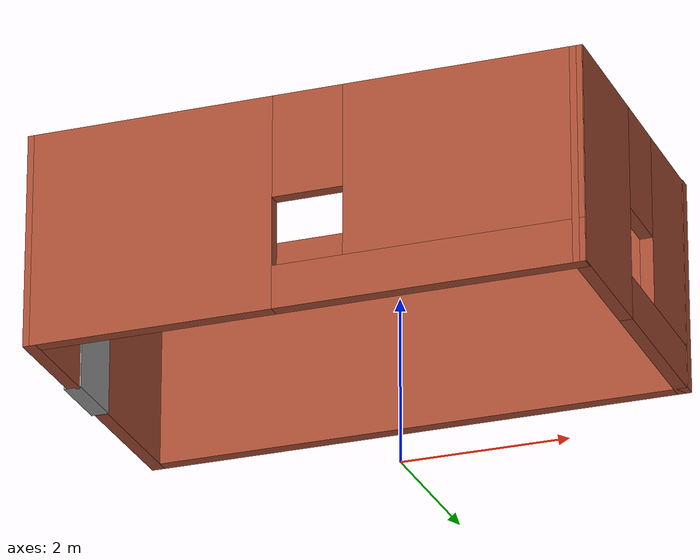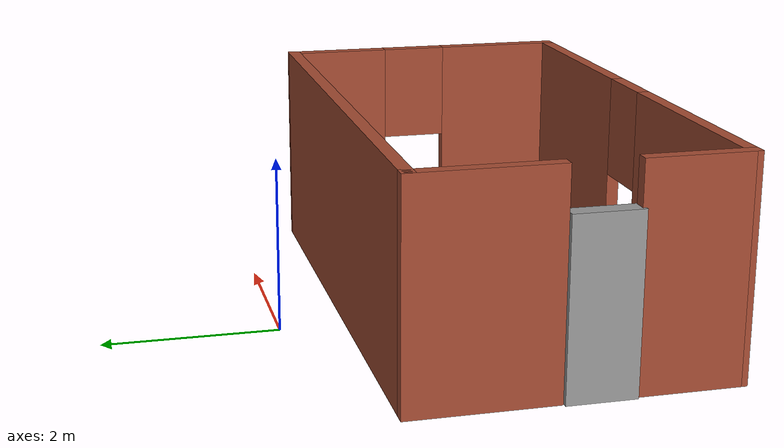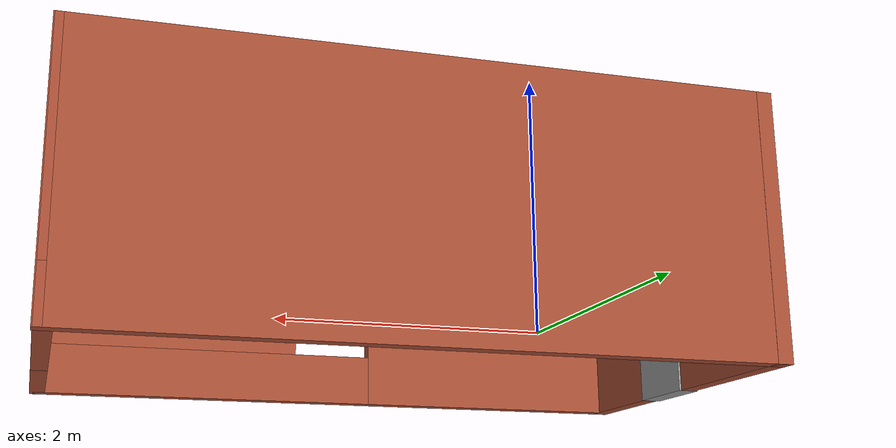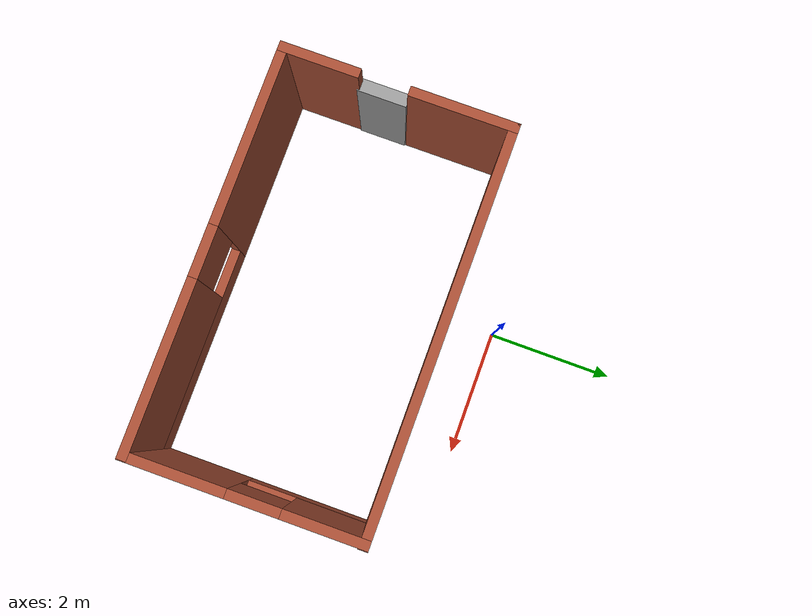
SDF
<?xml version='1.0'?>
<sdf version='1.7'>
  <model name='House'>
    <pose>0.475046 -2.21262 0 0 -0 0</pose>
    <link name='Door_0'>
      <collision name='Door_0_Collision'>
        <geometry>
          <box>
            <size>0.78 0.2 2</size>
          </box>
        </geometry>
        <pose>0 0 1 0 -0 0</pose>
      </collision>
      <visual name='Door_0_Visual'>
        <pose>0 0 1 0 -0 0</pose>
        <geometry>
          <box>
            <size>0.78 0.2 2</size>
          </box>
        </geometry>
        <material>
          <script>
            <uri>file://media/materials/scripts/gazebo.material</uri>
            <name>Gazebo/Grey</name>
          </script>
        </material>
      </visual>
      <pose>-3.10505 -0.602383 0 0 -0 -1.5708</pose>
    </link>
    <link name='Wall_0'>
      <collision name='Wall_0_Collision'>
        <geometry>
          <box>
            <size>1.25 0.15 2.5</size>
          </box>
        </geometry>
        <pose>0 0 1.25 0 -0 0</pose>
      </collision>
      <visual name='Wall_0_Visual'>
        <pose>0 0 1.25 0 -0 0</pose>
        <geometry>
          <box>
            <size>1.25 0.15 2.5</size>
          </box>
        </geometry>
        <material>
          <script>
            <uri>file://media/materials/scripts/gazebo.material</uri>
            <name>Gazebo/Bricks</name>
          </script>
          <ambient>1 1 1 1</ambient>
        </material>
        <meta>
          <layer>0</layer>
        </meta>
      </visual>
      <pose>-3.09505 -1.57738 0 0 -0 -1.5708</pose>
    </link>
    <link name='Wall_1'>
      <pose>-0.005046 -2.13238 0 0 -0 -0.001618</pose>
      <visual name='Wall_1_Visual_0'>
        <pose>-1.74074 0 1.25 0 -0 0</pose>
        <geometry>
          <box>
            <size>2.84852 0.15 2.5</size>
          </box>
        </geometry>
        <material>
          <script>
            <uri>file://media/materials/scripts/gazebo.material</uri>
            <name>Gazebo/Bricks</name>
          </script>
          <ambient>1 1 1 1</ambient>
        </material>
        <meta>
          <layer>0</layer>
        </meta>
      </visual>
      <collision name='Wall_1_Collision_0'>
        <geometry>
          <box>
            <size>2.84852 0.15 2.5</size>
          </box>
        </geometry>
        <pose>-1.74074 0 1.25 0 -0 0</pose>
      </collision>
      <visual name='Wall_1_Visual_1'>
        <pose>1.42426 0 0.25 0 -0 0</pose>
        <geometry>
          <box>
            <size>3.48149 0.15 0.5</size>
          </box>
        </geometry>
        <material>
          <script>
            <uri>file://media/materials/scripts/gazebo.material</uri>
            <name>Gazebo/Bricks</name>
          </script>
          <ambient>1 1 1 1</ambient>
        </material>
        <meta>
          <layer>0</layer>
        </meta>
      </visual>
      <collision name='Wall_1_Collision_1'>
        <geometry>
          <box>
            <size>3.48149 0.15 0.5</size>
          </box>
        </geometry>
        <pose>1.42426 0 0.25 0 -0 0</pose>
      </collision>
      <visual name='Wall_1_Visual_2'>
        <pose>1.82426 0 1.5 0 -0 0</pose>
        <geometry>
          <box>
            <size>2.68149 0.15 2</size>
          </box>
        </geometry>
        <material>
          <script>
            <uri>file://media/materials/scripts/gazebo.material</uri>
            <name>Gazebo/Bricks</name>
          </script>
          <ambient>1 1 1 1</ambient>
        </material>
        <meta>
          <layer>0</layer>
        </meta>
      </visual>
      <collision name='Wall_1_Collision_2'>
        <geometry>
          <box>
            <size>2.68149 0.15 2</size>
          </box>
        </geometry>
        <pose>1.82426 0 1.5 0 -0 0</pose>
      </collision>
      <visual name='Wall_1_Visual_3'>
        <pose>0.083514 0 1.9 0 -0 0</pose>
        <geometry>
          <box>
            <size>0.8 0.15 1.2</size>
          </box>
        </geometry>
        <material>
          <script>
            <uri>file://media/materials/scripts/gazebo.material</uri>
            <name>Gazebo/Bricks</name>
          </script>
          <ambient>1 1 1 1</ambient>
        </material>
        <meta>
          <layer>0</layer>
        </meta>
      </visual>
      <collision name='Wall_1_Collision_3'>
        <geometry>
          <box>
            <size>0.8 0.15 1.2</size>
          </box>
        </geometry>
        <pose>0.083514 0 1.9 0 -0 0</pose>
      </collision>
    </link>
    <link name='Wall_2'>
      <pose>3.08995 -0.377383 0 0 -0 1.57364</pose>
      <visual name='Wall_2_Visual_0'>
        <pose>-1.04636 0 1.25 0 -0 0</pose>
        <geometry>
          <box>
            <size>1.57733 0.15 2.5</size>
          </box>
        </geometry>
        <material>
          <script>
            <uri>file://media/materials/scripts/gazebo.material</uri>
            <name>Gazebo/Bricks</name>
          </script>
          <ambient>1 1 1 1</ambient>
        </material>
        <meta>
          <layer>0</layer>
        </meta>
      </visual>
      <collision name='Wall_2_Collision_0'>
        <geometry>
          <box>
            <size>1.57733 0.15 2.5</size>
          </box>
        </geometry>
        <pose>-1.04636 0 1.25 0 -0 0</pose>
      </collision>
      <visual name='Wall_2_Visual_1'>
        <pose>0.788663 0 0.25 0 -0 0</pose>
        <geometry>
          <box>
            <size>2.09273 0.15 0.5</size>
          </box>
        </geometry>
        <material>
          <script>
            <uri>file://media/materials/scripts/gazebo.material</uri>
            <name>Gazebo/Bricks</name>
          </script>
          <ambient>1 1 1 1</ambient>
        </material>
        <meta>
          <layer>0</layer>
        </meta>
      </visual>
      <collision name='Wall_2_Collision_1'>
        <geometry>
          <box>
            <size>2.09273 0.15 0.5</size>
          </box>
        </geometry>
        <pose>0.788663 0 0.25 0 -0 0</pose>
      </collision>
      <visual name='Wall_2_Visual_2'>
        <pose>1.18866 0 1.5 0 -0 0</pose>
        <geometry>
          <box>
            <size>1.29273 0.15 2</size>
          </box>
        </geometry>
        <material>
          <script>
            <uri>file://media/materials/scripts/gazebo.material</uri>
            <name>Gazebo/Bricks</name>
          </script>
          <ambient>1 1 1 1</ambient>
        </material>
        <meta>
          <layer>0</layer>
        </meta>
      </visual>
      <collision name='Wall_2_Collision_2'>
        <geometry>
          <box>
            <size>1.29273 0.15 2</size>
          </box>
        </geometry>
        <pose>1.18866 0 1.5 0 -0 0</pose>
      </collision>
      <visual name='Wall_2_Visual_3'>
        <pose>0.142298 0 1.9 0 -0 0</pose>
        <geometry>
          <box>
            <size>0.8 0.15 1.2</size>
          </box>
        </geometry>
        <material>
          <script>
            <uri>file://media/materials/scripts/gazebo.material</uri>
            <name>Gazebo/Bricks</name>
          </script>
          <ambient>1 1 1 1</ambient>
        </material>
        <meta>
          <layer>0</layer>
        </meta>
      </visual>
      <collision name='Wall_2_Collision_3'>
        <geometry>
          <box>
            <size>0.8 0.15 1.2</size>
          </box>
        </geometry>
        <pose>0.142298 0 1.9 0 -0 0</pose>
      </collision>
    </link>
    <link name='Wall_3'>
      <collision name='Wall_3_Collision'>
        <geometry>
          <box>
            <size>6.33001 0.15 2.5</size>
          </box>
        </geometry>
        <pose>0 0 1.25 0 -0 0</pose>
      </collision>
      <visual name='Wall_3_Visual'>
        <pose>0 0 1.25 0 -0 0</pose>
        <geometry>
          <box>
            <size>6.33001 0.15 2.5</size>
          </box>
        </geometry>
        <material>
          <script>
            <uri>file://media/materials/scripts/gazebo.material</uri>
            <name>Gazebo/Bricks</name>
          </script>
          <ambient>1 1 1 1</ambient>
        </material>
        <meta>
          <layer>0</layer>
        </meta>
      </visual>
      <pose>0.004954 1.38762 0 0 -0 3.13998</pose>
    </link>
    <link name='Wall_4'>
      <collision name='Wall_4_Collision'>
        <geometry>
          <box>
            <size>1.6703 0.15 2.5</size>
          </box>
        </geometry>
        <pose>0 0 1.25 0 -0 0</pose>
      </collision>
      <visual name='Wall_4_Visual'>
        <pose>0 0 1.25 0 -0 0</pose>
        <geometry>
          <box>
            <size>1.6703 0.15 2.5</size>
          </box>
        </geometry>
        <material>
          <script>
            <uri>file://media/materials/scripts/gazebo.material</uri>
            <name>Gazebo/Bricks</name>
          </script>
          <ambient>1 1 1 1</ambient>
        </material>
        <meta>
          <layer>0</layer>
        </meta>
      </visual>
      <pose>-3.09505 0.632617 0 0 -0 -1.5708</pose>
    </link>
    <static>1</static>
  </model>
</sdf>
